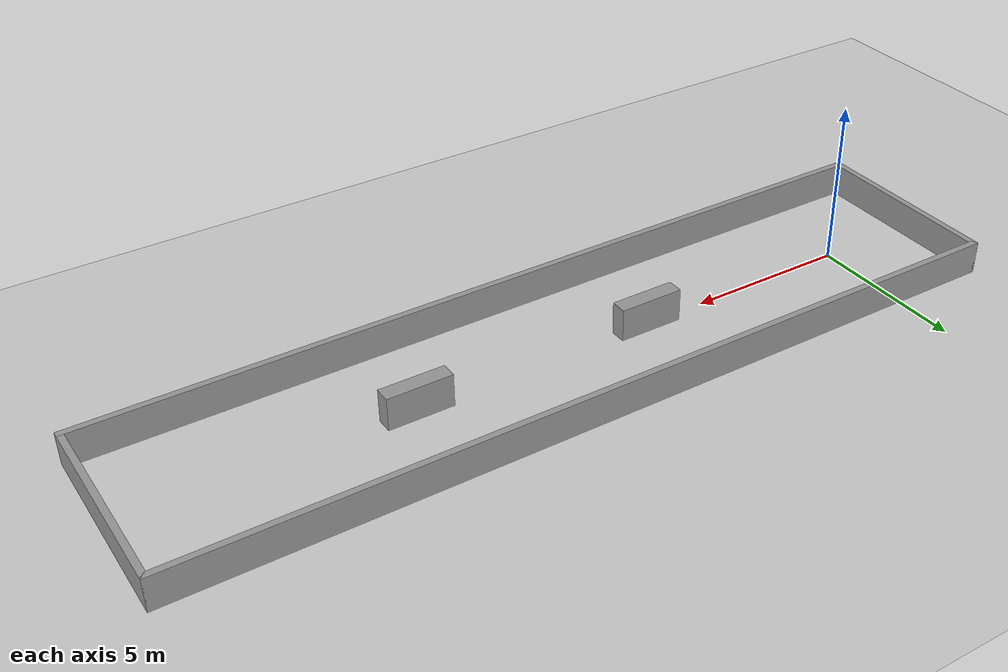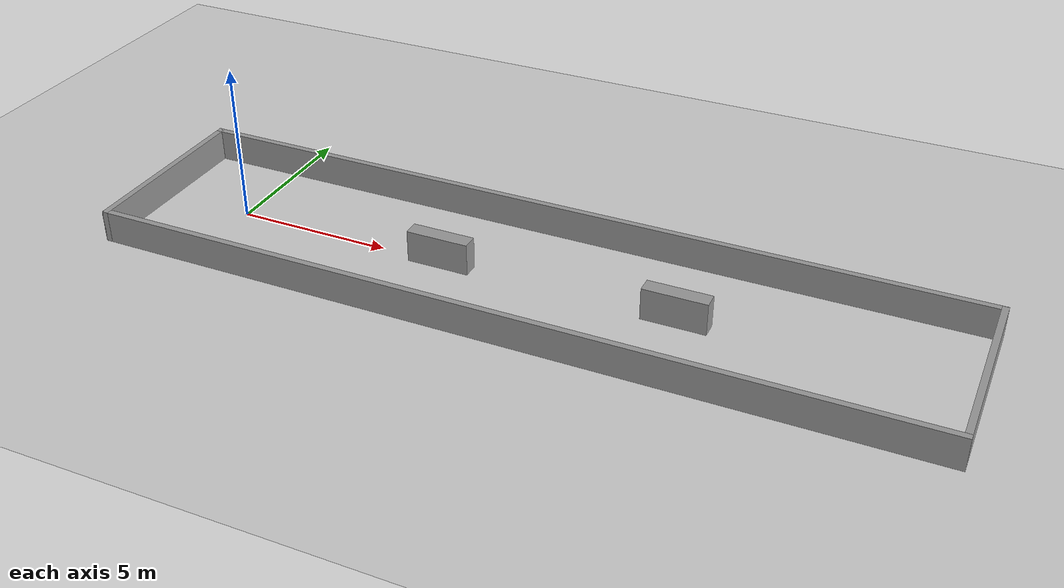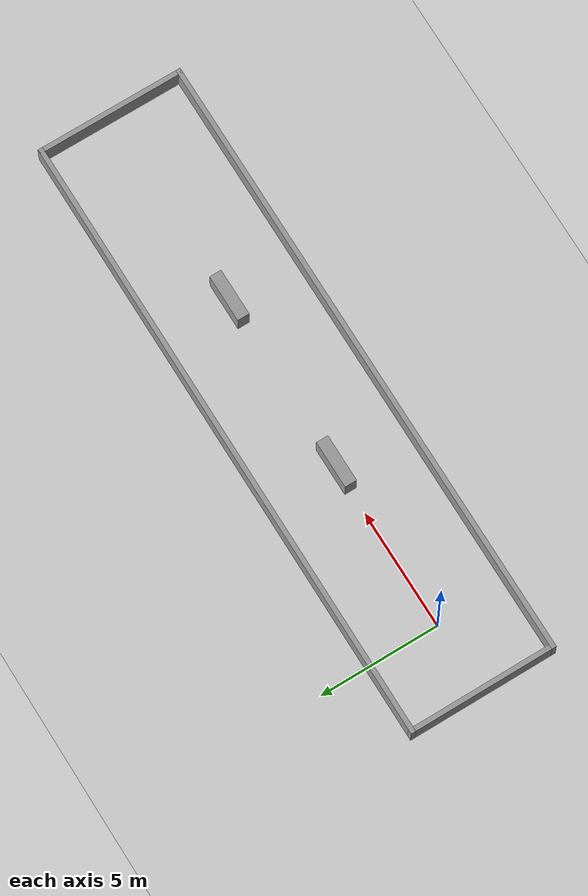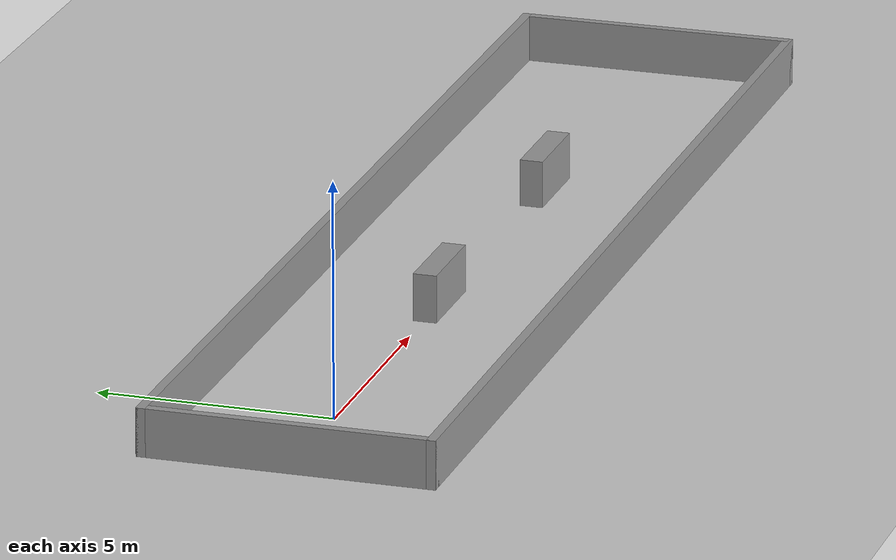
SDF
<?xml version="1.0" ?>
<sdf version="1.3">
  <world name="default">
    <!-- A global light source -->
    <include>
      <uri>model://sun</uri>
    </include>

    <!-- A ground plane -->
    <include>
      <uri>model://ground_plane</uri>
    </include>

<model name='BuildingDefaultName'>

    <link name='Wall_4'>
      <collision name='Wall_4_Collision'>
        <geometry>
          <box>
            <size>26.2 0.2 2</size>
          </box>
        </geometry>
        <pose>10 0 0 0 -0 0</pose>
      </collision>
      <visual name='Wall_4_Visual'>
        <pose>10 0 0 0 -0 0</pose>
        <geometry>
          <box>
            <size>26.2 0.2 2</size>
          </box>
        </geometry>
        <material>
          <script>
            <uri>file://media/materials/scripts/gazebo.material</uri>
            <name>Gazebo/Grey</name>
          </script>
        </material>
      </visual>
      <velocity_decay>
        <linear>0</linear>
        <angular>0</angular>
      </velocity_decay>
      <pose>0.0 3.0 0 0 -0 0</pose>
    </link>
    <link name='Wall_6'>
      <collision name='Wall_6_Collision'>
        <geometry>
          <box>
            <size>26.2 0.2 2</size>
          </box>
        </geometry>
        <pose>10 0 0 0 -0 0</pose>
      </collision>
      <visual name='Wall_6_Visual'>
        <pose>10 0 0 0 -0 0</pose>
        <geometry>
          <box>
            <size>26.2 0.2 2</size>
          </box>
        </geometry>
        <material>
          <script>
            <uri>file://media/materials/scripts/gazebo.material</uri>
            <name>Gazebo/Grey</name>
          </script>
        </material>
      </visual>
      <velocity_decay>
        <linear>0</linear>
        <angular>0</angular>
      </velocity_decay>
      <pose>0 -3.0 0 0 -0 0</pose>
    </link>
   <link name='Wall_9'>
      <collision name='Wall_9_Collision'>
        <geometry>
          <box>
            <size>0.2 6.2 2</size>
          </box>
        </geometry>
        <pose>-3 0 0 0 -0 0</pose>
      </collision>
      <visual name='Wall_10_Visual'>
        <pose>-3 0 0 0 -0 0</pose>
        <geometry>
          <box>
            <size>0.2 6.2 2</size>
          </box>
        </geometry>
        <material>
          <script>
            <uri>file://media/materials/scripts/gazebo.material</uri>
            <name>Gazebo/Grey</name>
          </script>
        </material>
      </visual>
      <velocity_decay>
        <linear>0</linear>
        <angular>0</angular>
      </velocity_decay>
      <pose>0 0.0 0 0 -0 0</pose>
    </link>
    <link name='Wall_10'>
      <collision name='Wall_10_Collision'>
        <geometry>
          <box>
            <size>0.2 6.2 2</size>
          </box>
        </geometry>
        <pose>-3 0 0 0 -0 0</pose>
      </collision>
      <visual name='Wall_10_Visual'>
        <pose>-3 0 0 0 -0 0</pose>
        <geometry>
          <box>
            <size>0.2 6.2 2</size>
          </box>
        </geometry>
        <material>
          <script>
            <uri>file://media/materials/scripts/gazebo.material</uri>
            <name>Gazebo/Grey</name>
          </script>
        </material>
      </visual>
      <velocity_decay>
        <linear>0</linear>
        <angular>0</angular>
      </velocity_decay>
      <pose>26 0.0 0 0 -0 0</pose>
    </link>
    <link name='Wall_7'>
      <collision name='Wall_7_Collision'>
        <geometry>
          <box>
            <size>2 0.5 2</size>
          </box>
        </geometry>
        <pose>7 0 0 0 -0 0</pose>
      </collision>
      <visual name='Wall_7_Visual'>
        <pose>7 0 0 0 -0 0</pose>
        <geometry>
          <box>
            <size>2 0.5 2</size>
          </box>
        </geometry>
        <material>
          <script>
            <uri>file://media/materials/scripts/gazebo.material</uri>
            <name>Gazebo/Grey</name>
          </script>
        </material>
      </visual>
      <velocity_decay>
        <linear>0</linear>
        <angular>0</angular>
      </velocity_decay>
      <pose>0 0.0 0 0 -0 0</pose>
    </link>

    <link name='Wall_8'>
      <collision name='Wall_8_Collision'>
        <geometry>
          <box>
            <size>2 0.5 2</size>
          </box>
        </geometry>
        <pose>14.5 0 0 0 -0 0</pose>
      </collision>
      <visual name='Wall_8_Visual'>
       <pose>14.5 0 0 0 -0 0</pose>
        <geometry>
          <box>
            <size>2 0.5 2</size>
          </box>
        </geometry>
        <material>
          <script>
            <uri>file://media/materials/scripts/gazebo.material</uri>
            <name>Gazebo/Grey</name>
          </script>
        </material>
      </visual>
      <velocity_decay>
        <linear>0</linear>
        <angular>0</angular>
      </velocity_decay>
      <pose>0 0.0 0 0 -0 0</pose>
    </link>

    <static>1</static>
  </model>

  </world>
</sdf>
